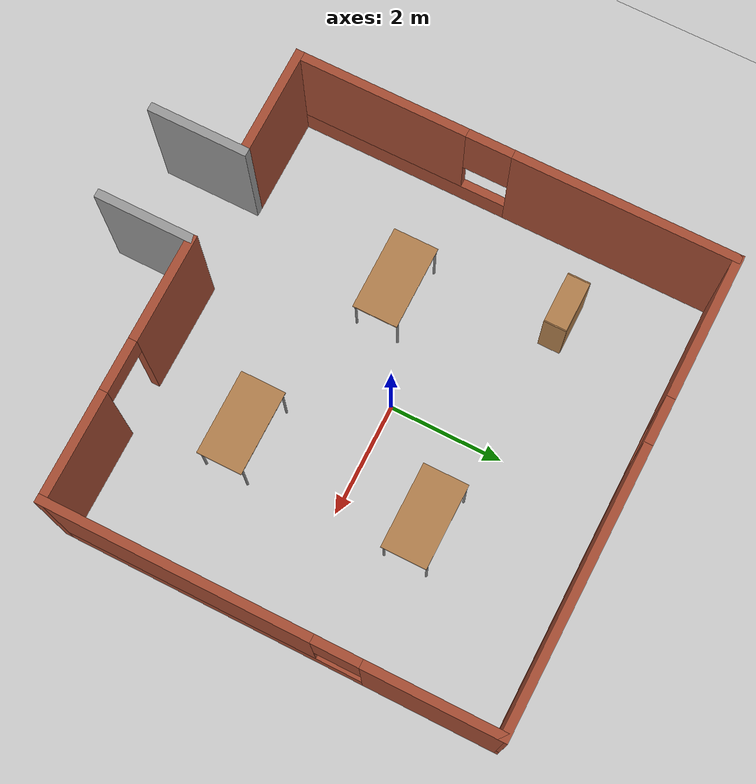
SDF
<sdf version="1.5">
 <world name="default">
  <light name="sun" type="directional">
   <pose>0 0 10 0 -0 0</pose>
   <diffuse>0.8 0.8 0.8 1</diffuse>
   <specular>0.2 0.2 0.2 1</specular>
   <attenuation>
    <range>1000</range>
    <constant>0.9</constant>
    <linear>0.01</linear>
    <quadratic>0.001</quadratic>
   </attenuation>
   <direction>-0.5 0.1 -0.9</direction>
   <spot><inner_angle>0</inner_angle><outer_angle>0</outer_angle><falloff>0</falloff></spot>
  </light>
  <model name="ground_plane">
   <static>1</static>
   <link name="link">
    <collision name="collision">
     <geometry><plane><normal>0 0 1</normal><size>100 100</size></plane></geometry>
     <surface><friction><ode><mu>100</mu><mu2>50</mu2></ode></friction></surface>
    </collision>
    <visual name="visual">
     <cast_shadows>0</cast_shadows>
     <geometry><plane><normal>0 0 1</normal><size>100 100</size></plane></geometry>
     <material>
      <script><uri>file://media/materials/scripts/gazebo.material</uri><name>Gazebo/Grey</name></script>
     </material>
    </visual>
   </link>
  </model>
  <gravity>0 0 -9.8</gravity>
  <magnetic_field>6e-06 2.3e-05 -4.2e-05</magnetic_field>
  <atmosphere type="adiabatic"/>
  <physics type="ode">
   <max_step_size>0.001</max_step_size>
   <real_time_factor>1</real_time_factor>
   <real_time_update_rate>1000</real_time_update_rate>
  </physics>
  <scene><ambient>0.4 0.4 0.4 1</ambient><background>0.7 0.7 0.7 1</background><shadows>1</shadows></scene>
  <audio><device>default</device></audio>
  <spherical_coordinates>
   <surface_model>EARTH_WGS84</surface_model>
   <latitude_deg>0</latitude_deg>
   <longitude_deg>0</longitude_deg>
   <elevation>0</elevation>
   <heading_deg>0</heading_deg>
  </spherical_coordinates>
  <model name="table">
   <static>1</static>
   <link name="link">
    <collision name="surface">
     <pose>0 0 1 0 -0 0</pose>
     <geometry><box><size>1.5 0.8 0.03</size></box></geometry>
     <surface><friction><ode><mu>0.6</mu><mu2>0.6</mu2></ode></friction></surface>
    </collision>
    <visual name="visual1">
     <pose>0 0 1 0 -0 0</pose>
     <geometry><box><size>1.5 0.8 0.03</size></box></geometry>
     <material>
      <script><uri>file://media/materials/scripts/gazebo.material</uri><name>Gazebo/Wood</name></script>
     </material>
    </visual>
    <collision name="front_left_leg">
     <pose>0.68 0.38 0.5 0 -0 0</pose>
     <geometry><cylinder><radius>0.02</radius><length>1</length></cylinder></geometry>
    </collision>
    <visual name="front_left_leg">
     <pose>0.68 0.38 0.5 0 -0 0</pose>
     <geometry><cylinder><radius>0.02</radius><length>1</length></cylinder></geometry>
     <material>
      <script><uri>file://media/materials/scripts/gazebo.material</uri><name>Gazebo/Grey</name></script>
     </material>
    </visual>
    <collision name="front_right_leg">
     <pose>0.68 -0.38 0.5 0 -0 0</pose>
     <geometry><cylinder><radius>0.02</radius><length>1</length></cylinder></geometry>
    </collision>
    <visual name="front_right_leg">
     <pose>0.68 -0.38 0.5 0 -0 0</pose>
     <geometry><cylinder><radius>0.02</radius><length>1</length></cylinder></geometry>
     <material>
      <script><uri>file://media/materials/scripts/gazebo.material</uri><name>Gazebo/Grey</name></script>
     </material>
    </visual>
    <collision name="back_right_leg">
     <pose>-0.68 -0.38 0.5 0 -0 0</pose>
     <geometry><cylinder><radius>0.02</radius><length>1</length></cylinder></geometry>
    </collision>
    <visual name="back_right_leg">
     <pose>-0.68 -0.38 0.5 0 -0 0</pose>
     <geometry><cylinder><radius>0.02</radius><length>1</length></cylinder></geometry>
     <material>
      <script><uri>file://media/materials/scripts/gazebo.material</uri><name>Gazebo/Grey</name></script>
     </material>
    </visual>
    <collision name="back_left_leg">
     <pose>-0.68 0.38 0.5 0 -0 0</pose>
     <geometry><cylinder><radius>0.02</radius><length>1</length></cylinder></geometry>
    </collision>
    <visual name="back_left_leg">
     <pose>-0.68 0.38 0.5 0 -0 0</pose>
     <geometry><cylinder><radius>0.02</radius><length>1</length></cylinder></geometry>
     <material>
      <script><uri>file://media/materials/scripts/gazebo.material</uri><name>Gazebo/Grey</name></script>
     </material>
    </visual>
   </link>
   <pose>1.5653 1.38307 0 0 -0 0</pose>
  </model>
  <model name="table_0">
   <static>1</static>
   <link name="link">
    <collision name="surface">
     <pose>0 0 1 0 -0 0</pose>
     <geometry><box><size>1.5 0.8 0.03</size></box></geometry>
     <surface><friction><ode><mu>0.6</mu><mu2>0.6</mu2></ode></friction></surface>
    </collision>
    <visual name="visual1">
     <pose>0 0 1 0 -0 0</pose>
     <geometry><box><size>1.5 0.8 0.03</size></box></geometry>
     <material>
      <script><uri>file://media/materials/scripts/gazebo.material</uri><name>Gazebo/Wood</name></script>
     </material>
    </visual>
    <collision name="front_left_leg">
     <pose>0.68 0.38 0.5 0 -0 0</pose>
     <geometry><cylinder><radius>0.02</radius><length>1</length></cylinder></geometry>
    </collision>
    <visual name="front_left_leg">
     <pose>0.68 0.38 0.5 0 -0 0</pose>
     <geometry><cylinder><radius>0.02</radius><length>1</length></cylinder></geometry>
     <material>
      <script><uri>file://media/materials/scripts/gazebo.material</uri><name>Gazebo/Grey</name></script>
     </material>
    </visual>
    <collision name="front_right_leg">
     <pose>0.68 -0.38 0.5 0 -0 0</pose>
     <geometry><cylinder><radius>0.02</radius><length>1</length></cylinder></geometry>
    </collision>
    <visual name="front_right_leg">
     <pose>0.68 -0.38 0.5 0 -0 0</pose>
     <geometry><cylinder><radius>0.02</radius><length>1</length></cylinder></geometry>
     <material>
      <script><uri>file://media/materials/scripts/gazebo.material</uri><name>Gazebo/Grey</name></script>
     </material>
    </visual>
    <collision name="back_right_leg">
     <pose>-0.68 -0.38 0.5 0 -0 0</pose>
     <geometry><cylinder><radius>0.02</radius><length>1</length></cylinder></geometry>
    </collision>
    <visual name="back_right_leg">
     <pose>-0.68 -0.38 0.5 0 -0 0</pose>
     <geometry><cylinder><radius>0.02</radius><length>1</length></cylinder></geometry>
     <material>
      <script><uri>file://media/materials/scripts/gazebo.material</uri><name>Gazebo/Grey</name></script>
     </material>
    </visual>
    <collision name="back_left_leg">
     <pose>-0.68 0.38 0.5 0 -0 0</pose>
     <geometry><cylinder><radius>0.02</radius><length>1</length></cylinder></geometry>
    </collision>
    <visual name="back_left_leg">
     <pose>-0.68 0.38 0.5 0 -0 0</pose>
     <geometry><cylinder><radius>0.02</radius><length>1</length></cylinder></geometry>
     <material>
      <script><uri>file://media/materials/scripts/gazebo.material</uri><name>Gazebo/Grey</name></script>
     </material>
    </visual>
   </link>
   <pose>1.53361 -1.8863 0 0 -0 0</pose>
  </model>
  <model name="table_1">
   <static>1</static>
   <link name="link">
    <collision name="surface">
     <pose>0 0 1 0 -0 0</pose>
     <geometry><box><size>1.5 0.8 0.03</size></box></geometry>
     <surface><friction><ode><mu>0.6</mu><mu2>0.6</mu2></ode></friction></surface>
    </collision>
    <visual name="visual1">
     <pose>0 0 1 0 -0 0</pose>
     <geometry><box><size>1.5 0.8 0.03</size></box></geometry>
     <material>
      <script><uri>file://media/materials/scripts/gazebo.material</uri><name>Gazebo/Wood</name></script>
     </material>
    </visual>
    <collision name="front_left_leg">
     <pose>0.68 0.38 0.5 0 -0 0</pose>
     <geometry><cylinder><radius>0.02</radius><length>1</length></cylinder></geometry>
    </collision>
    <visual name="front_left_leg">
     <pose>0.68 0.38 0.5 0 -0 0</pose>
     <geometry><cylinder><radius>0.02</radius><length>1</length></cylinder></geometry>
     <material>
      <script><uri>file://media/materials/scripts/gazebo.material</uri><name>Gazebo/Grey</name></script>
     </material>
    </visual>
    <collision name="front_right_leg">
     <pose>0.68 -0.38 0.5 0 -0 0</pose>
     <geometry><cylinder><radius>0.02</radius><length>1</length></cylinder></geometry>
    </collision>
    <visual name="front_right_leg">
     <pose>0.68 -0.38 0.5 0 -0 0</pose>
     <geometry><cylinder><radius>0.02</radius><length>1</length></cylinder></geometry>
     <material>
      <script><uri>file://media/materials/scripts/gazebo.material</uri><name>Gazebo/Grey</name></script>
     </material>
    </visual>
    <collision name="back_right_leg">
     <pose>-0.68 -0.38 0.5 0 -0 0</pose>
     <geometry><cylinder><radius>0.02</radius><length>1</length></cylinder></geometry>
    </collision>
    <visual name="back_right_leg">
     <pose>-0.68 -0.38 0.5 0 -0 0</pose>
     <geometry><cylinder><radius>0.02</radius><length>1</length></cylinder></geometry>
     <material>
      <script><uri>file://media/materials/scripts/gazebo.material</uri><name>Gazebo/Grey</name></script>
     </material>
    </visual>
    <collision name="back_left_leg">
     <pose>-0.68 0.38 0.5 0 -0 0</pose>
     <geometry><cylinder><radius>0.02</radius><length>1</length></cylinder></geometry>
    </collision>
    <visual name="back_left_leg">
     <pose>-0.68 0.38 0.5 0 -0 0</pose>
     <geometry><cylinder><radius>0.02</radius><length>1</length></cylinder></geometry>
     <material>
      <script><uri>file://media/materials/scripts/gazebo.material</uri><name>Gazebo/Grey</name></script>
     </material>
    </visual>
   </link>
   <pose>-1.73643 -0.804084 0 0 -0 0</pose>
  </model>
  <model name="test_model">
   <pose>0.134378 -0.634727 0 0 -0 0</pose>
   <link name="Wall_0">
    <pose>-4.05 0.799755 0 0 -0 -1.5708</pose>
    <visual name="Wall_0_Visual_0">
     <pose>-1.93427 0 1.25 0 -0 0</pose>
     <geometry><box><size>3.88147 0.15 2.5</size></box></geometry>
     <material>
      <script><uri>file://media/materials/scripts/gazebo.material</uri><name>Gazebo/Bricks</name></script>
      <ambient>1 1 1 1</ambient>
     </material>
     <meta><layer>0</layer></meta>
    </visual>
    <collision name="Wall_0_Collision_0">
     <geometry><box><size>3.88147 0.15 2.5</size></box></geometry>
     <pose>-1.93427 0 1.25 0 -0 0</pose>
    </collision>
    <visual name="Wall_0_Visual_1">
     <pose>1.94073 0 0.25 0 -0 0</pose>
     <geometry><box><size>3.86853 0.15 0.5</size></box></geometry>
     <material>
      <script><uri>file://media/materials/scripts/gazebo.material</uri><name>Gazebo/Bricks</name></script>
      <ambient>1 1 1 1</ambient>
     </material>
     <meta><layer>0</layer></meta>
    </visual>
    <collision name="Wall_0_Collision_1">
     <geometry><box><size>3.86853 0.15 0.5</size></box></geometry>
     <pose>1.94073 0 0.25 0 -0 0</pose>
    </collision>
    <visual name="Wall_0_Visual_2">
     <pose>2.34073 0 1.5 0 -0 0</pose>
     <geometry><box><size>3.06853 0.15 2</size></box></geometry>
     <material>
      <script><uri>file://media/materials/scripts/gazebo.material</uri><name>Gazebo/Bricks</name></script>
      <ambient>1 1 1 1</ambient>
     </material>
     <meta><layer>0</layer></meta>
    </visual>
    <collision name="Wall_0_Collision_2">
     <geometry><box><size>3.06853 0.15 2</size></box></geometry>
     <pose>2.34073 0 1.5 0 -0 0</pose>
    </collision>
    <visual name="Wall_0_Visual_3">
     <pose>0.406468 0 1.9 0 -0 0</pose>
     <geometry><box><size>0.8 0.15 1.2</size></box></geometry>
     <material>
      <script><uri>file://media/materials/scripts/gazebo.material</uri><name>Gazebo/Bricks</name></script>
      <ambient>1 1 1 1</ambient>
     </material>
     <meta><layer>0</layer></meta>
    </visual>
    <collision name="Wall_0_Collision_3">
     <geometry><box><size>0.8 0.15 1.2</size></box></geometry>
     <pose>0.406468 0 1.9 0 -0 0</pose>
    </collision>
   </link>
   <link name="Wall_2">
    <pose>0 4.59976 0 0 -0 -0.006568</pose>
    <visual name="Wall_2_Visual_0">
     <pose>-2.84671 0 1.25 0 -0 0</pose>
     <geometry><box><size>2.55658 0.15 2.5</size></box></geometry>
     <material>
      <script><uri>file://media/materials/scripts/gazebo.material</uri><name>Gazebo/Bricks</name></script>
      <ambient>1 1 1 1</ambient>
     </material>
     <meta><layer>0</layer></meta>
    </visual>
    <collision name="Wall_2_Collision_0">
     <geometry><box><size>2.55658 0.15 2.5</size></box></geometry>
     <pose>-2.84671 0 1.25 0 -0 0</pose>
    </collision>
    <visual name="Wall_2_Visual_1">
     <pose>1.27829 0 0.25 0 -0 0</pose>
     <geometry><box><size>5.69342 0.15 0.5</size></box></geometry>
     <material>
      <script><uri>file://media/materials/scripts/gazebo.material</uri><name>Gazebo/Bricks</name></script>
      <ambient>1 1 1 1</ambient>
     </material>
     <meta><layer>0</layer></meta>
    </visual>
    <collision name="Wall_2_Collision_1">
     <geometry><box><size>5.69342 0.15 0.5</size></box></geometry>
     <pose>1.27829 0 0.25 0 -0 0</pose>
    </collision>
    <visual name="Wall_2_Visual_2">
     <pose>1.67829 0 1.5 0 -0 0</pose>
     <geometry><box><size>4.89342 0.15 2</size></box></geometry>
     <material>
      <script><uri>file://media/materials/scripts/gazebo.material</uri><name>Gazebo/Bricks</name></script>
      <ambient>1 1 1 1</ambient>
     </material>
     <meta><layer>0</layer></meta>
    </visual>
    <collision name="Wall_2_Collision_2">
     <geometry><box><size>4.89342 0.15 2</size></box></geometry>
     <pose>1.67829 0 1.5 0 -0 0</pose>
    </collision>
    <visual name="Wall_2_Visual_3">
     <pose>-1.16842 0 1.9 0 -0 0</pose>
     <geometry><box><size>0.8 0.15 1.2</size></box></geometry>
     <material>
      <script><uri>file://media/materials/scripts/gazebo.material</uri><name>Gazebo/Bricks</name></script>
      <ambient>1 1 1 1</ambient>
     </material>
     <meta><layer>0</layer></meta>
    </visual>
    <collision name="Wall_2_Collision_3">
     <geometry><box><size>0.8 0.15 1.2</size></box></geometry>
     <pose>-1.16842 0 1.9 0 -0 0</pose>
    </collision>
   </link>
   <link name="Wall_3">
    <pose>4.05 0.773155 0 0 -0 -1.5708</pose>
    <visual name="Wall_3_Visual_0">
     <pose>-2.68967 0 1.25 0 -0 0</pose>
     <geometry><box><size>2.37067 0.15 2.5</size></box></geometry>
     <material>
      <script><uri>file://media/materials/scripts/gazebo.material</uri><name>Gazebo/Bricks</name></script>
      <ambient>1 1 1 1</ambient>
     </material>
     <meta><layer>0</layer></meta>
    </visual>
    <collision name="Wall_3_Collision_0">
     <geometry><box><size>2.37067 0.15 2.5</size></box></geometry>
     <pose>-2.68967 0 1.25 0 -0 0</pose>
    </collision>
    <visual name="Wall_3_Visual_1">
     <pose>1.18534 0 0.25 0 -0 0</pose>
     <geometry><box><size>5.37933 0.15 0.5</size></box></geometry>
     <material>
      <script><uri>file://media/materials/scripts/gazebo.material</uri><name>Gazebo/Bricks</name></script>
      <ambient>1 1 1 1</ambient>
     </material>
     <meta><layer>0</layer></meta>
    </visual>
    <collision name="Wall_3_Collision_1">
     <geometry><box><size>5.37933 0.15 0.5</size></box></geometry>
     <pose>1.18534 0 0.25 0 -0 0</pose>
    </collision>
    <visual name="Wall_3_Visual_2">
     <pose>1.58533 0 1.5 0 -0 0</pose>
     <geometry><box><size>4.57933 0.15 2</size></box></geometry>
     <material>
      <script><uri>file://media/materials/scripts/gazebo.material</uri><name>Gazebo/Bricks</name></script>
      <ambient>1 1 1 1</ambient>
     </material>
     <meta><layer>0</layer></meta>
    </visual>
    <collision name="Wall_3_Collision_2">
     <geometry><box><size>4.57933 0.15 2</size></box></geometry>
     <pose>1.58533 0 1.5 0 -0 0</pose>
    </collision>
    <visual name="Wall_3_Visual_3">
     <pose>-1.10433 0 1.9 0 -0 0</pose>
     <geometry><box><size>0.8 0.15 1.2</size></box></geometry>
     <material>
      <script><uri>file://media/materials/scripts/gazebo.material</uri><name>Gazebo/Bricks</name></script>
      <ambient>1 1 1 1</ambient>
     </material>
     <meta><layer>0</layer></meta>
    </visual>
    <collision name="Wall_3_Collision_3">
     <geometry><box><size>0.8 0.15 1.2</size></box></geometry>
     <pose>-1.10433 0 1.9 0 -0 0</pose>
    </collision>
   </link>
   <link name="Wall_4">
    <pose>1.75 -3.02684 0 0 -0 3.14159</pose>
    <visual name="Wall_4_Visual_0">
     <pose>-1.40263 0 1.25 0 -0 0</pose>
     <geometry><box><size>1.94474 0.15 2.5</size></box></geometry>
     <material>
      <script><uri>file://media/materials/scripts/gazebo.material</uri><name>Gazebo/Bricks</name></script>
      <ambient>1 1 1 1</ambient>
     </material>
     <meta><layer>0</layer></meta>
    </visual>
    <collision name="Wall_4_Collision_0">
     <geometry><box><size>1.94474 0.15 2.5</size></box></geometry>
     <pose>-1.40263 0 1.25 0 -0 0</pose>
    </collision>
    <visual name="Wall_4_Visual_1">
     <pose>1.42237 0 1.25 0 -0 0</pose>
     <geometry><box><size>1.90526 0.15 2.5</size></box></geometry>
     <material>
      <script><uri>file://media/materials/scripts/gazebo.material</uri><name>Gazebo/Bricks</name></script>
      <ambient>1 1 1 1</ambient>
     </material>
     <meta><layer>0</layer></meta>
    </visual>
    <collision name="Wall_4_Collision_1">
     <geometry><box><size>1.90526 0.15 2.5</size></box></geometry>
     <pose>1.42237 0 1.25 0 -0 0</pose>
    </collision>
    <visual name="Wall_4_Visual_2">
     <pose>0.019743 0 2.25 0 -0 0</pose>
     <geometry><box><size>0.9 0.15 0.5</size></box></geometry>
     <material>
      <script><uri>file://media/materials/scripts/gazebo.material</uri><name>Gazebo/Bricks</name></script>
      <ambient>1 1 1 1</ambient>
     </material>
     <meta><layer>0</layer></meta>
    </visual>
    <collision name="Wall_4_Collision_2">
     <geometry><box><size>0.9 0.15 0.5</size></box></geometry>
     <pose>0.019743 0 2.25 0 -0 0</pose>
    </collision>
   </link>
   <link name="Wall_6">
    <collision name="Wall_6_Collision">
     <geometry><box><size>2 0.15 2.5</size></box></geometry>
     <pose>0 0 1.25 0 -0 0</pose>
    </collision>
    <visual name="Wall_6_Visual">
     <pose>0 0 1.25 0 -0 0</pose>
     <geometry><box><size>2 0.15 2.5</size></box></geometry>
     <material>
      <script><uri>file://media/materials/scripts/gazebo.material</uri><name>Gazebo/Bricks</name></script>
      <ambient>1 1 1 1</ambient>
     </material>
     <meta><layer>0</layer></meta>
    </visual>
    <pose>-3.125 -3.00025 0 0 -0 0</pose>
   </link>
   <link name="Wall_7">
    <collision name="Wall_7_Collision">
     <geometry><box><size>1.75 0.15 2.5</size></box></geometry>
     <pose>0 0 1.25 0 -0 0</pose>
    </collision>
    <visual name="Wall_7_Visual">
     <pose>0 0 1.25 0 -0 0</pose>
     <geometry><box><size>1.75 0.15 2.5</size></box></geometry>
     <material>
      <script><uri>file://media/materials/scripts/gazebo.material</uri><name>Gazebo/Grey</name></script>
      <ambient>1 1 1 1</ambient>
     </material>
     <meta><layer>0</layer></meta>
    </visual>
    <pose>-2.2 -3.80024 0 0 -0 -1.5708</pose>
   </link>
   <link name="Wall_9">
    <collision name="Wall_9_Collision">
     <geometry><box><size>1.75 0.15 2.5</size></box></geometry>
     <pose>0 0 1.25 0 -0 0</pose>
    </collision>
    <visual name="Wall_9_Visual">
     <pose>0 0 1.25 0 -0 0</pose>
     <geometry><box><size>1.75 0.15 2.5</size></box></geometry>
     <material>
      <script><uri>file://media/materials/scripts/gazebo.material</uri><name>Gazebo/Grey</name></script>
      <ambient>1 1 1 1</ambient>
     </material>
     <meta><layer>0</layer></meta>
    </visual>
    <pose>-0.55 -3.82685 0 0 -0 -1.5708</pose>
   </link>
   <static>1</static>
  </model>
  <model name="bookshelf">
   <static>1</static>
   <link name="link">
    <inertial><mass>1</mass></inertial>
    <collision name="back">
     <pose>0 0.005 0.6 0 -0 0</pose>
     <geometry><box><size>0.9 0.01 1.2</size></box></geometry>
    </collision>
    <visual name="visual1">
     <pose>0 0.005 0.6 0 -0 0</pose>
     <geometry><box><size>0.9 0.01 1.2</size></box></geometry>
     <material>
      <script><uri>file://media/materials/scripts/gazebo.material</uri><name>Gazebo/Wood</name></script>
     </material>
    </visual>
    <collision name="left_side">
     <pose>0.45 -0.195 0.6 0 -0 0</pose>
     <geometry><box><size>0.02 0.4 1.2</size></box></geometry>
    </collision>
    <visual name="visual2">
     <pose>0.45 -0.195 0.6 0 -0 0</pose>
     <geometry><box><size>0.02 0.4 1.2</size></box></geometry>
     <material>
      <script><uri>file://media/materials/scripts/gazebo.material</uri><name>Gazebo/Wood</name></script>
     </material>
    </visual>
    <collision name="right_side">
     <pose>-0.45 -0.195 0.6 0 -0 0</pose>
     <geometry><box><size>0.02 0.4 1.2</size></box></geometry>
    </collision>
    <visual name="visual3">
     <pose>-0.45 -0.195 0.6 0 -0 0</pose>
     <geometry><box><size>0.02 0.4 1.2</size></box></geometry>
     <material>
      <script><uri>file://media/materials/scripts/gazebo.material</uri><name>Gazebo/Wood</name></script>
     </material>
    </visual>
    <collision name="bottom">
     <pose>0 -0.195 0.03 0 -0 0</pose>
     <geometry><box><size>0.88 0.4 0.06</size></box></geometry>
    </collision>
    <visual name="visual4">
     <pose>0 -0.195 0.03 0 -0 0</pose>
     <geometry><box><size>0.88 0.4 0.06</size></box></geometry>
     <material>
      <script><uri>file://media/materials/scripts/gazebo.material</uri><name>Gazebo/Wood</name></script>
     </material>
    </visual>
    <collision name="top">
     <pose>0 -0.195 1.19 0 -0 0</pose>
     <geometry><box><size>0.88 0.4 0.02</size></box></geometry>
    </collision>
    <visual name="visual5">
     <pose>0 -0.195 1.19 0 -0 0</pose>
     <geometry><box><size>0.88 0.4 0.02</size></box></geometry>
     <material>
      <script><uri>file://media/materials/scripts/gazebo.material</uri><name>Gazebo/Wood</name></script>
     </material>
    </visual>
    <collision name="low_shelf">
     <pose>0 -0.195 0.43 0 -0 0</pose>
     <geometry><box><size>0.88 0.4 0.02</size></box></geometry>
    </collision>
    <visual name="visual6">
     <pose>0 -0.195 0.43 0 -0 0</pose>
     <geometry><box><size>0.88 0.4 0.02</size></box></geometry>
     <material>
      <script><uri>file://media/materials/scripts/gazebo.material</uri><name>Gazebo/Wood</name></script>
     </material>
    </visual>
    <collision name="high_shelf">
     <pose>0 -0.195 0.8 0 -0 0</pose>
     <geometry><box><size>0.88 0.4 0.02</size></box></geometry>
    </collision>
    <visual name="visual7">
     <pose>0 -0.195 0.8 0 -0 0</pose>
     <geometry><box><size>0.88 0.4 0.02</size></box></geometry>
     <material>
      <script><uri>file://media/materials/scripts/gazebo.material</uri><name>Gazebo/Wood</name></script>
     </material>
    </visual>
   </link>
   <pose>-2.54959 2.06567 0 0 -0 0</pose>
  </model>
 </world>
</sdf>
